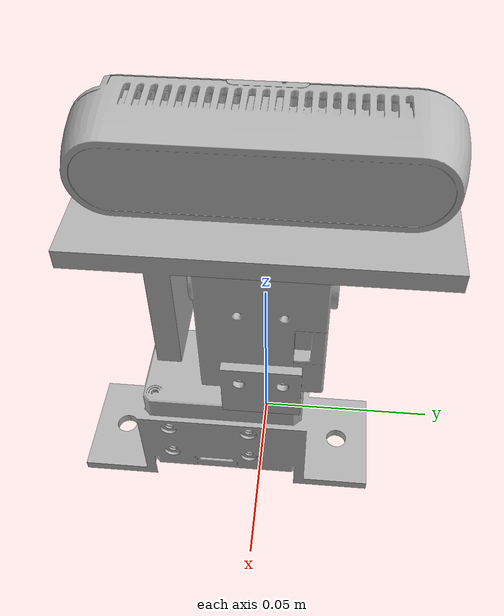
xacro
<?xml version="1.0" ?>
<robot name="PanTiltMerge" xmlns:xacro="http://www.ros.org/wiki/xacro">

<xacro:include filename="$(find pioneer_playground)/description/urdf/materials.xacro" />
<xacro:include filename="$(find pioneer_playground)/description/urdf/PanTiltMerge.trans" />
<xacro:include filename="$(find pioneer_playground)/description/urdf/PanTiltMerge.gazebo" />

  <link name="world"/>

  <joint name="fixed" type="fixed">
    <parent link="world"/>
    <child link="base_link"/>
  </joint>

<link name="base_link">
  <inertial>
    <origin xyz="-5.232320800743009e-09 -0.011675026445706529 -0.001243359375873323" rpy="0 0 0"/>
    <mass value="0.4289043067180927"/>
    <inertia ixx="0.000168" iyy="8.1e-05" izz="0.000154" ixy="-0.0" iyz="-0.0" ixz="-0.0"/>
  </inertial>
  <visual>
    <origin xyz="0 0 0" rpy="0 0 0"/>
    <geometry>
      <mesh filename="package://pioneer_playground/description/meshes/base_link.stl" scale="0.001 0.001 0.001"/>
    </geometry>
    <material name="silver"/>
  </visual>
  <collision>
    <origin xyz="0 0 0" rpy="0 0 0"/>
    <geometry>
      <mesh filename="package://pioneer_playground/description/meshes/base_link.stl" scale="0.001 0.001 0.001"/>
    </geometry>
  </collision>
</link>

<link name="Component14_1">
  <inertial>
    <origin xyz="-0.0001512609043505653 -0.0003478894806370932 0.026515354837247523" rpy="0 0 0"/>
    <mass value="0.386848751476802"/>
    <inertia ixx="0.000119" iyy="0.000111" izz="6.5e-05" ixy="-0.0" iyz="0.0" ixz="0.0"/>
  </inertial>
  <visual>
    <origin xyz="-0.0 -0.0 -0.019" rpy="0 0 0"/>
    <geometry>
      <mesh filename="package://pioneer_playground/description/meshes/Component14_1.stl" scale="0.001 0.001 0.001"/>
    </geometry>
    <material name="silver"/>
  </visual>
  <collision>
    <origin xyz="-0.0 -0.0 -0.019" rpy="0 0 0"/>
    <geometry>
      <mesh filename="package://pioneer_playground/description/meshes/Component14_1.stl" scale="0.001 0.001 0.001"/>
    </geometry>
  </collision>
</link>

<link name="Component148_1">
  <inertial>
    <origin xyz="0.0009536087233993468 0.01688485145444989 0.027606542091649172" rpy="0 0 0"/>
    <mass value="0.5157672422003375"/>
    <inertia ixx="0.000396" iyy="0.000145" izz="0.000374" ixy="1e-06" iyz="-3.6e-05" ixz="-4e-06"/>
  </inertial>
  <visual>
    <origin xyz="0.000202 0.019 -0.059365" rpy="0 0 0"/>
    <geometry>
      <mesh filename="package://pioneer_playground/description/meshes/Component148_1.stl" scale="0.001 0.001 0.001"/>
    </geometry>
    <material name="silver"/>
  </visual>
  <collision>
    <origin xyz="0.000202 0.019 -0.059365" rpy="0 0 0"/>
    <geometry>
      <mesh filename="package://pioneer_playground/description/meshes/Component148_1.stl" scale="0.001 0.001 0.001"/>
    </geometry>
  </collision>
</link>

<joint name="Rev11" type="continuous">
  <origin xyz="0.0 0.0 0.019" rpy="0 0 0"/>
  <parent link="base_link"/>
  <child link="Component14_1"/>
  <axis xyz="0.0 0.0 1.0"/>
</joint>

<joint name="Rev12" type="continuous">
  <origin xyz="-0.000202 -0.019 0.040365" rpy="0 0 0"/>
  <parent link="Component14_1"/>
  <child link="Component148_1"/>
  <axis xyz="0.0 -1.0 0.0"/>
</joint>

</robot>

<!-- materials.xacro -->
<robot name="PanTiltMerge" xmlns:xacro="http://www.ros.org/wiki/xacro" >

<material name="silver">
  <color rgba="0.700 0.700 0.700 1.000"/>
</material>

</robot>

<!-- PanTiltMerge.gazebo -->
<robot name="PanTiltMerge" xmlns:xacro="http://www.ros.org/wiki/xacro" >

<xacro:property name="body_color" value="Gazebo/Silver" />

<gazebo>
  <plugin name="gazebo_ros_control" filename="libgazebo_ros_control.so">
    <robotNamespace>/PanTiltMerge</robotNamespace>
   </plugin>
</gazebo>

<gazebo reference="base_link">
  <material>${body_color}</material>
  <mu1>0.2</mu1>
  <mu2>0.2</mu2>
  <selfCollide>true</selfCollide>
  <gravity>true</gravity>
</gazebo>

<gazebo reference="Component14_1">
  <material>${body_color}</material>
  <mu1>0.2</mu1>
  <mu2>0.2</mu2>
  <selfCollide>true</selfCollide>
</gazebo>

<gazebo reference="Component148_1">
  <material>${body_color}</material>
  <mu1>0.2</mu1>
  <mu2>0.2</mu2>
  <selfCollide>true</selfCollide>
</gazebo>

</robot>
